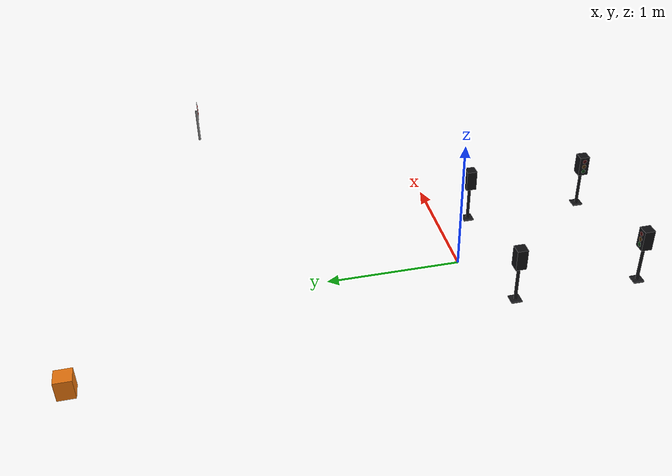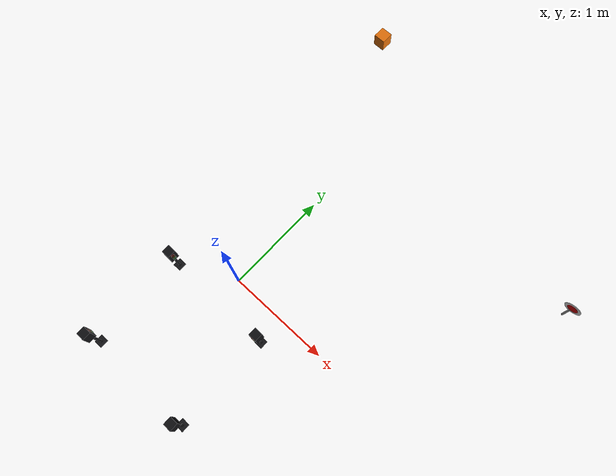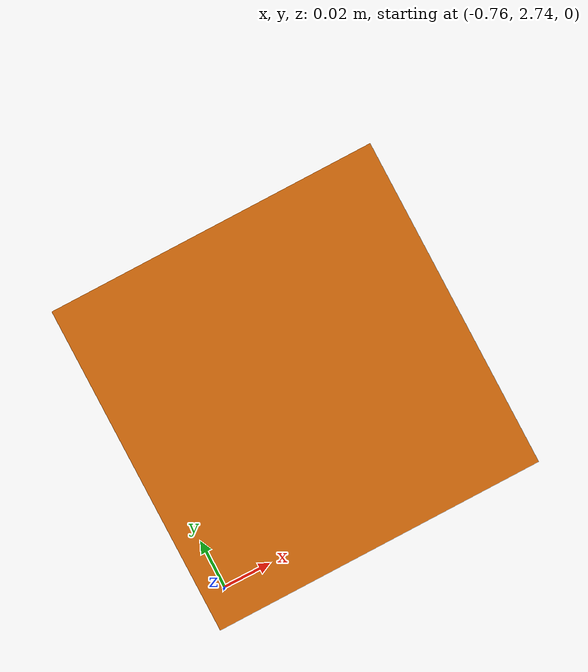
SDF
<sdf version="1.7">
 <world name="be_limo_track">
  <include><uri>model://sun</uri></include>
  <scene><ambient>0.6 0.6 0.6 1</ambient><background>0.7 0.7 0.7 1</background><shadows>false</shadows></scene>
  <model name="traffic_light_west">
   <static>true</static>
   <pose>0.54 -1.21 0 0 0 3.1416</pose>
   <link name="link">
    <collision name="pole_collision">
     <pose>0 0 0.15 0 0 0</pose>
     <geometry><cylinder><radius>0.012</radius><length>0.30</length></cylinder></geometry>
    </collision>
    <visual name="pole">
     <pose>0 0 0.15 0 0 0</pose>
     <geometry><cylinder><radius>0.012</radius><length>0.30</length></cylinder></geometry>
     <material><ambient>0.08 0.08 0.09 1</ambient><diffuse>0.08 0.08 0.09 1</diffuse></material>
    </visual>
    <visual name="base">
     <pose>0 0 0.005 0 0 0</pose>
     <geometry><box><size>0.08 0.08 0.01</size></box></geometry>
     <material><ambient>0.08 0.08 0.09 1</ambient><diffuse>0.08 0.08 0.09 1</diffuse></material>
    </visual>
    <collision name="head_collision">
     <pose>0 0 0.375 0 0 0</pose>
     <geometry><box><size>0.08 0.08 0.16</size></box></geometry>
    </collision>
    <visual name="head">
     <pose>0 0 0.375 0 0 0</pose>
     <geometry><box><size>0.08 0.08 0.16</size></box></geometry>
     <material><ambient>0.06 0.06 0.07 1</ambient><diffuse>0.06 0.06 0.07 1</diffuse></material>
    </visual>
    <visual name="red_off">
     <pose>0.041 0 0.42 0 1.5708 0</pose>
     <geometry><cylinder><radius>0.017</radius><length>0.004</length></cylinder></geometry>
     <material><ambient>0.25 0.02 0.02 1</ambient><diffuse>0.25 0.02 0.02 1</diffuse></material>
    </visual>
    <visual name="amber_off">
     <pose>0.041 0 0.375 0 1.5708 0</pose>
     <geometry><cylinder><radius>0.017</radius><length>0.004</length></cylinder></geometry>
     <material><ambient>0.25 0.15 0.02 1</ambient><diffuse>0.25 0.15 0.02 1</diffuse></material>
    </visual>
    <visual name="green_off">
     <pose>0.041 0 0.33 0 1.5708 0</pose>
     <geometry><cylinder><radius>0.017</radius><length>0.004</length></cylinder></geometry>
     <material><ambient>0.02 0.2 0.04 1</ambient><diffuse>0.02 0.2 0.04 1</diffuse></material>
    </visual>
   </link>
  </model>
  <model name="traffic_light_east">
   <static>true</static>
   <pose>-0.51 -0.26 0 0 0 0.0000</pose>
   <link name="link">
    <collision name="pole_collision">
     <pose>0 0 0.15 0 0 0</pose>
     <geometry><cylinder><radius>0.012</radius><length>0.30</length></cylinder></geometry>
    </collision>
    <visual name="pole">
     <pose>0 0 0.15 0 0 0</pose>
     <geometry><cylinder><radius>0.012</radius><length>0.30</length></cylinder></geometry>
     <material><ambient>0.08 0.08 0.09 1</ambient><diffuse>0.08 0.08 0.09 1</diffuse></material>
    </visual>
    <visual name="base">
     <pose>0 0 0.005 0 0 0</pose>
     <geometry><box><size>0.08 0.08 0.01</size></box></geometry>
     <material><ambient>0.08 0.08 0.09 1</ambient><diffuse>0.08 0.08 0.09 1</diffuse></material>
    </visual>
    <collision name="head_collision">
     <pose>0 0 0.375 0 0 0</pose>
     <geometry><box><size>0.08 0.08 0.16</size></box></geometry>
    </collision>
    <visual name="head">
     <pose>0 0 0.375 0 0 0</pose>
     <geometry><box><size>0.08 0.08 0.16</size></box></geometry>
     <material><ambient>0.06 0.06 0.07 1</ambient><diffuse>0.06 0.06 0.07 1</diffuse></material>
    </visual>
    <visual name="red_off">
     <pose>0.041 0 0.42 0 1.5708 0</pose>
     <geometry><cylinder><radius>0.017</radius><length>0.004</length></cylinder></geometry>
     <material><ambient>0.25 0.02 0.02 1</ambient><diffuse>0.25 0.02 0.02 1</diffuse></material>
    </visual>
    <visual name="amber_off">
     <pose>0.041 0 0.375 0 1.5708 0</pose>
     <geometry><cylinder><radius>0.017</radius><length>0.004</length></cylinder></geometry>
     <material><ambient>0.25 0.15 0.02 1</ambient><diffuse>0.25 0.15 0.02 1</diffuse></material>
    </visual>
    <visual name="green_off">
     <pose>0.041 0 0.33 0 1.5708 0</pose>
     <geometry><cylinder><radius>0.017</radius><length>0.004</length></cylinder></geometry>
     <material><ambient>0.02 0.2 0.04 1</ambient><diffuse>0.02 0.2 0.04 1</diffuse></material>
    </visual>
   </link>
  </model>
  <model name="traffic_light_north">
   <static>true</static>
   <pose>-0.51 -1.21 0 0 0 1.5708</pose>
   <link name="link">
    <collision name="pole_collision">
     <pose>0 0 0.15 0 0 0</pose>
     <geometry><cylinder><radius>0.012</radius><length>0.30</length></cylinder></geometry>
    </collision>
    <visual name="pole">
     <pose>0 0 0.15 0 0 0</pose>
     <geometry><cylinder><radius>0.012</radius><length>0.30</length></cylinder></geometry>
     <material><ambient>0.08 0.08 0.09 1</ambient><diffuse>0.08 0.08 0.09 1</diffuse></material>
    </visual>
    <visual name="base">
     <pose>0 0 0.005 0 0 0</pose>
     <geometry><box><size>0.08 0.08 0.01</size></box></geometry>
     <material><ambient>0.08 0.08 0.09 1</ambient><diffuse>0.08 0.08 0.09 1</diffuse></material>
    </visual>
    <collision name="head_collision">
     <pose>0 0 0.375 0 0 0</pose>
     <geometry><box><size>0.08 0.08 0.16</size></box></geometry>
    </collision>
    <visual name="head">
     <pose>0 0 0.375 0 0 0</pose>
     <geometry><box><size>0.08 0.08 0.16</size></box></geometry>
     <material><ambient>0.06 0.06 0.07 1</ambient><diffuse>0.06 0.06 0.07 1</diffuse></material>
    </visual>
    <visual name="red_off">
     <pose>0.041 0 0.42 0 1.5708 0</pose>
     <geometry><cylinder><radius>0.017</radius><length>0.004</length></cylinder></geometry>
     <material><ambient>0.25 0.02 0.02 1</ambient><diffuse>0.25 0.02 0.02 1</diffuse></material>
    </visual>
    <visual name="amber_off">
     <pose>0.041 0 0.375 0 1.5708 0</pose>
     <geometry><cylinder><radius>0.017</radius><length>0.004</length></cylinder></geometry>
     <material><ambient>0.25 0.15 0.02 1</ambient><diffuse>0.25 0.15 0.02 1</diffuse></material>
    </visual>
    <visual name="green_off">
     <pose>0.041 0 0.33 0 1.5708 0</pose>
     <geometry><cylinder><radius>0.017</radius><length>0.004</length></cylinder></geometry>
     <material><ambient>0.02 0.2 0.04 1</ambient><diffuse>0.02 0.2 0.04 1</diffuse></material>
    </visual>
   </link>
  </model>
  <model name="traffic_light_south">
   <static>true</static>
   <pose>0.54 -0.26 0 0 0 -1.5708</pose>
   <link name="link">
    <collision name="pole_collision">
     <pose>0 0 0.15 0 0 0</pose>
     <geometry><cylinder><radius>0.012</radius><length>0.30</length></cylinder></geometry>
    </collision>
    <visual name="pole">
     <pose>0 0 0.15 0 0 0</pose>
     <geometry><cylinder><radius>0.012</radius><length>0.30</length></cylinder></geometry>
     <material><ambient>0.08 0.08 0.09 1</ambient><diffuse>0.08 0.08 0.09 1</diffuse></material>
    </visual>
    <visual name="base">
     <pose>0 0 0.005 0 0 0</pose>
     <geometry><box><size>0.08 0.08 0.01</size></box></geometry>
     <material><ambient>0.08 0.08 0.09 1</ambient><diffuse>0.08 0.08 0.09 1</diffuse></material>
    </visual>
    <collision name="head_collision">
     <pose>0 0 0.375 0 0 0</pose>
     <geometry><box><size>0.08 0.08 0.16</size></box></geometry>
    </collision>
    <visual name="head">
     <pose>0 0 0.375 0 0 0</pose>
     <geometry><box><size>0.08 0.08 0.16</size></box></geometry>
     <material><ambient>0.06 0.06 0.07 1</ambient><diffuse>0.06 0.06 0.07 1</diffuse></material>
    </visual>
    <visual name="red_off">
     <pose>0.041 0 0.42 0 1.5708 0</pose>
     <geometry><cylinder><radius>0.017</radius><length>0.004</length></cylinder></geometry>
     <material><ambient>0.25 0.02 0.02 1</ambient><diffuse>0.25 0.02 0.02 1</diffuse></material>
    </visual>
    <visual name="amber_off">
     <pose>0.041 0 0.375 0 1.5708 0</pose>
     <geometry><cylinder><radius>0.017</radius><length>0.004</length></cylinder></geometry>
     <material><ambient>0.25 0.15 0.02 1</ambient><diffuse>0.25 0.15 0.02 1</diffuse></material>
    </visual>
    <visual name="green_off">
     <pose>0.041 0 0.33 0 1.5708 0</pose>
     <geometry><cylinder><radius>0.017</radius><length>0.004</length></cylinder></geometry>
     <material><ambient>0.02 0.2 0.04 1</ambient><diffuse>0.02 0.2 0.04 1</diffuse></material>
    </visual>
   </link>
  </model>
  <model name="stop_sign">
   <static>true</static>
   <pose>2.36 1.75 0 0 0 -1.5708</pose>
   <link name="link">
    <collision name="pole_collision">
     <pose>0 0 0.15 0 0 0</pose>
     <geometry><cylinder><radius>0.01</radius><length>0.30</length></cylinder></geometry>
    </collision>
    <visual name="pole">
     <pose>0 0 0.15 0 0 0</pose>
     <geometry><cylinder><radius>0.01</radius><length>0.30</length></cylinder></geometry>
     <material><ambient>0.5 0.5 0.5 1</ambient><diffuse>0.5 0.5 0.5 1</diffuse></material>
    </visual>
    <visual name="border">
     <pose>0.012 0 0.30 0 1.5708 0</pose>
     <geometry><cylinder><radius>0.08</radius><length>0.004</length></cylinder></geometry>
     <material>
      <ambient>0.95 0.95 0.95 1</ambient>
      <diffuse>0.95 0.95 0.95 1</diffuse>
      <emissive>0.4 0.4 0.4 1</emissive>
     </material>
    </visual>
    <visual name="red">
     <pose>0.015 0 0.30 0 1.5708 0</pose>
     <geometry><cylinder><radius>0.05</radius><length>0.004</length></cylinder></geometry>
     <material>
      <ambient>0.85 0.02 0.02 1</ambient>
      <diffuse>0.85 0.02 0.02 1</diffuse>
      <emissive>0.5 0 0 1</emissive>
     </material>
    </visual>
   </link>
  </model>
  <model name="obstacle_box">
   <static>true</static>
   <pose>-0.70 2.795 0.075 0 0 0</pose>
   <link name="link">
    <collision name="collision"><geometry><box><size>0.12 0.12 0.15</size></box></geometry></collision>
    <visual name="visual">
     <geometry><box><size>0.12 0.12 0.15</size></box></geometry>
     <material><ambient>0.9 0.45 0.05 1</ambient><diffuse>0.9 0.45 0.05 1</diffuse></material>
    </visual>
   </link>
  </model>
 </world>
</sdf>
